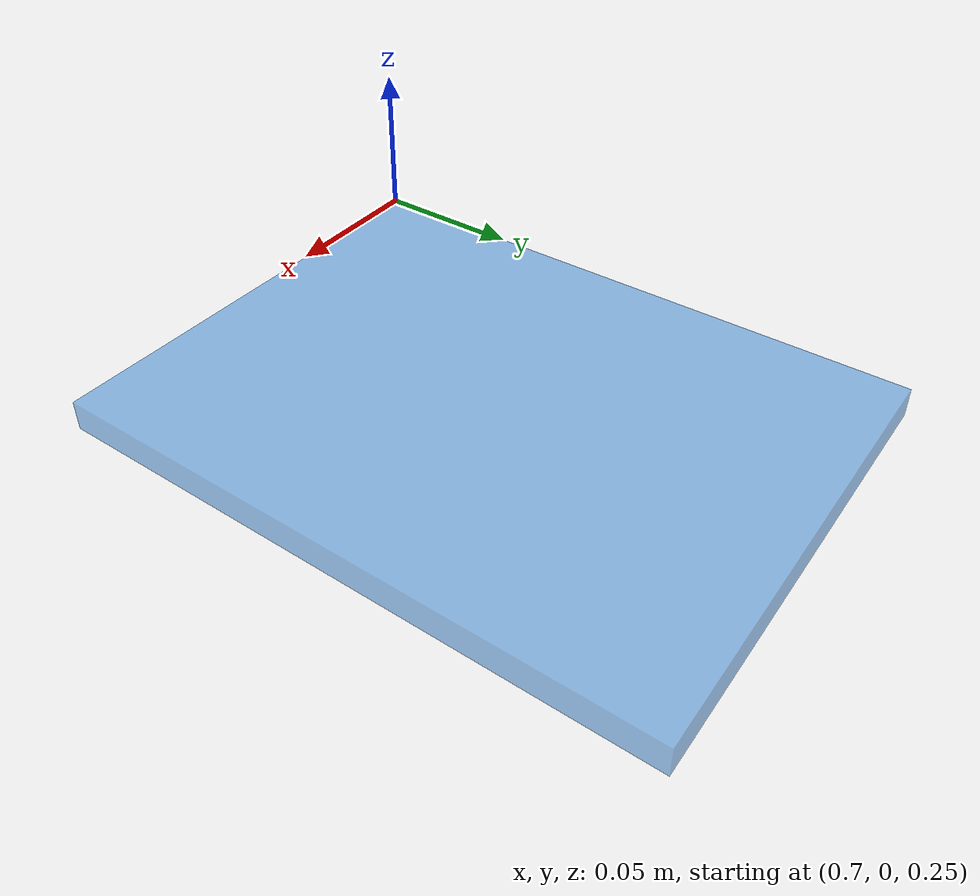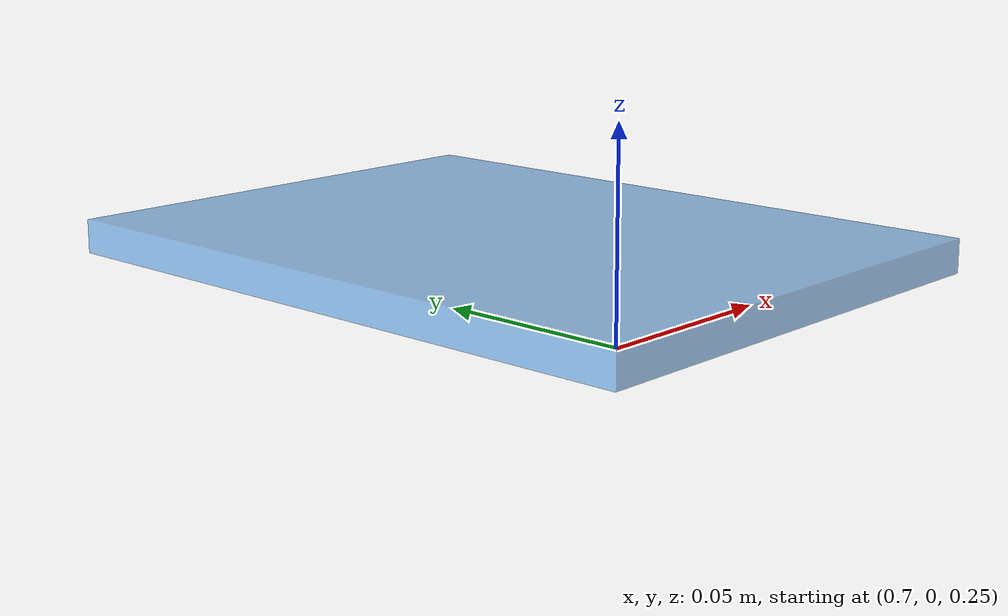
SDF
<?xml version="1.0" ?>
<sdf version="1.9">
  <model name="calibration_plate">
    <static>true</static>
    <link name="plate_link">
      <!-- 仅作为材质/结构模板；start_simulation.sh 会按 calibration.yaml 生成本次运行的位姿和尺寸。 -->
      <pose>0.775 0.1 0.245 0 0 0</pose>
      <visual name="visual">
        <geometry>
          <box>
            <size>0.15 0.20 0.01</size>
          </box>
        </geometry>
        <material>
          <ambient>0.3 0.6 0.9 0.6</ambient>
          <diffuse>0.3 0.6 0.9 0.6</diffuse>
        </material>
      </visual>
      <collision name="collision">
        <geometry>
          <box>
            <size>0.15 0.20 0.01</size>
          </box>
        </geometry>
      </collision>
    </link>
  </model>
</sdf>
